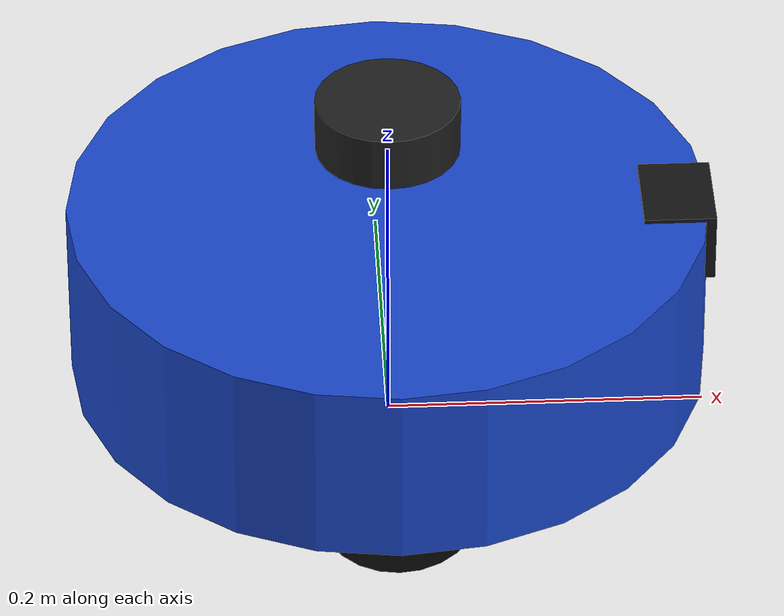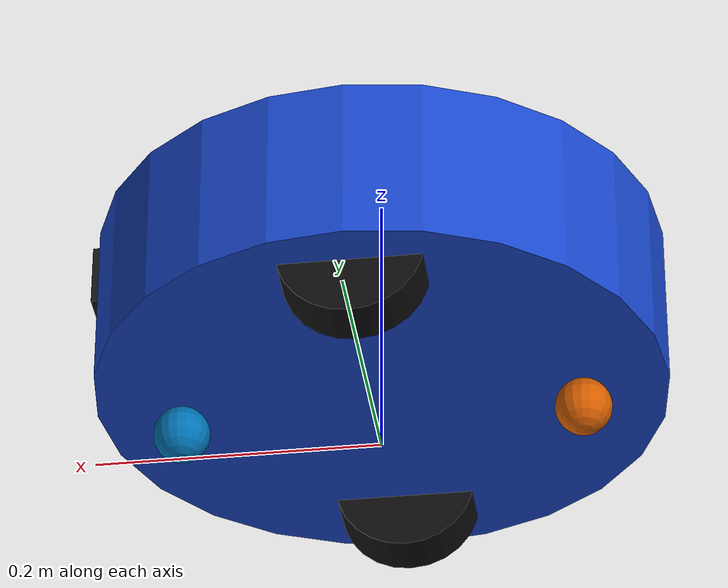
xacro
<?xml version="1.0"?>
<robot xmlns:xacro="http://www.ros.org/wiki/xacro" name="arbotrix_bot">

  <link name="base_footprint"/>

  <link name="base_link">
    <visual>
      <geometry><cylinder radius="0.20" length="0.12"/></geometry>
      <material name="body_blue"><color rgba="0.10 0.28 0.80 1.0"/></material>
    </visual>
    <collision>
      <geometry><cylinder radius="0.20" length="0.12"/></geometry>
    </collision>
    <inertial>
      <mass value="8.0"/>
      <origin xyz="0 0 0" rpy="0 0 0"/>
      <inertia ixx="0.082" ixy="0" ixz="0" iyy="0.082" iyz="0" izz="0.160"/>
    </inertial>
  </link>

  <joint name="base_footprint_joint" type="fixed">
    <parent link="base_footprint"/>
    <child link="base_link"/>
    <origin xyz="0 0 0.10" rpy="0 0 0"/>
  </joint>

  <!-- =========================
       DRIVE WHEELS
       wheel separation = 0.30 m
       wheel radius     = 0.05 m
       ========================= -->
  <link name="left_wheel_link">
    <visual>
      <origin rpy="1.57079632679 0 0"/>
      <geometry><cylinder radius="0.05" length="0.035"/></geometry>
      <material name="wheel_black"><color rgba="0.05 0.05 0.05 1.0"/></material>
    </visual>
    <collision>
      <origin rpy="1.57079632679 0 0"/>
      <geometry><cylinder radius="0.05" length="0.035"/></geometry>
    </collision>
    <inertial>
      <mass value="0.35"/>
      <inertia ixx="0.00024" ixy="0" ixz="0" iyy="0.00044" iyz="0" izz="0.00024"/>
    </inertial>
  </link>

  <joint name="left_wheel_joint" type="continuous">
    <parent link="base_link"/>
    <child link="left_wheel_link"/>
    <origin xyz="0 0.15 -0.05" rpy="0 0 0"/>
    <axis xyz="0 1 0"/>
  </joint>

  <link name="right_wheel_link">
    <visual>
      <origin rpy="1.57079632679 0 0"/>
      <geometry><cylinder radius="0.05" length="0.035"/></geometry>
      <material name="wheel_black"/>
    </visual>
    <collision>
      <origin rpy="1.57079632679 0 0"/>
      <geometry><cylinder radius="0.05" length="0.035"/></geometry>
    </collision>
    <inertial>
      <mass value="0.35"/>
      <inertia ixx="0.00024" ixy="0" ixz="0" iyy="0.00044" iyz="0" izz="0.00024"/>
    </inertial>
  </link>

  <joint name="right_wheel_joint" type="continuous">
    <parent link="base_link"/>
    <child link="right_wheel_link"/>
    <origin xyz="0 -0.15 -0.05" rpy="0 0 0"/>
    <axis xyz="0 1 0"/>
  </joint>

  <!-- Passive contact points keep the round body stable in Gazebo. -->
  <link name="front_caster_link">
    <collision><geometry><sphere radius="0.02"/></geometry></collision>
    <visual><geometry><sphere radius="0.02"/></geometry></visual>
    <inertial><mass value="0.05"/><inertia ixx="0.00001" ixy="0" ixz="0" iyy="0.00001" iyz="0" izz="0.00001"/></inertial>
  </link>
  <joint name="front_caster_joint" type="fixed">
    <parent link="base_link"/><child link="front_caster_link"/>
    <origin xyz="0.14 0 -0.08"/>
  </joint>

  <link name="rear_caster_link">
    <collision><geometry><sphere radius="0.02"/></geometry></collision>
    <visual><geometry><sphere radius="0.02"/></geometry></visual>
    <inertial><mass value="0.05"/><inertia ixx="0.00001" ixy="0" ixz="0" iyy="0.00001" iyz="0" izz="0.00001"/></inertial>
  </link>
  <joint name="rear_caster_joint" type="fixed">
    <parent link="base_link"/><child link="rear_caster_link"/>
    <origin xyz="-0.14 0 -0.08"/>
  </joint>

  <!-- =========================
       360-degree LiDAR
       ========================= -->
  <link name="lidar_link">
    <visual>
      <geometry><cylinder radius="0.045" length="0.035"/></geometry>
      <material name="lidar_dark"><color rgba="0.12 0.12 0.12 1"/></material>
    </visual>
  </link>
  <joint name="lidar_joint" type="fixed">
    <parent link="base_link"/><child link="lidar_link"/>
    <origin xyz="0 0 0.12" rpy="0 0 0"/>
  </joint>

  <!-- =========================
       RGB camera
       ========================= -->
  <link name="camera_link">
    <visual>
      <geometry><box size="0.045 0.06 0.045"/></geometry>
      <material name="camera_dark"><color rgba="0.08 0.08 0.08 1"/></material>
    </visual>
  </link>
  <joint name="camera_joint" type="fixed">
    <parent link="base_link"/><child link="camera_link"/>
    <origin xyz="0.18 0 0.04" rpy="0 0 0"/>
  </joint>

  <!-- =========================
       GAZEBO CONTACT/FUNCTIONAL SETTINGS
       ========================= -->
  <gazebo reference="left_wheel_link">
    <mu1>1.0</mu1><mu2>1.0</mu2><kp>1000000.0</kp><kd>10.0</kd>
  </gazebo>
  <gazebo reference="right_wheel_link">
    <mu1>1.0</mu1><mu2>1.0</mu2><kp>1000000.0</kp><kd>10.0</kd>
  </gazebo>
  <gazebo reference="front_caster_link"><mu1>0.02</mu1><mu2>0.02</mu2></gazebo>
  <gazebo reference="rear_caster_link"><mu1>0.02</mu1><mu2>0.02</mu2></gazebo>

  <gazebo reference="lidar_link">
    <sensor name="lidar" type="ray">
      <always_on>true</always_on>
      <visualize>false</visualize>
      <update_rate>8.0</update_rate>
      <ray>
        <scan>
          <horizontal>
            <samples>180</samples>
            <resolution>1</resolution>
            <min_angle>-3.14159265359</min_angle>
            <max_angle>3.14159265359</max_angle>
          </horizontal>
        </scan>
        <range><min>0.08</min><max>8.0</max><resolution>0.02</resolution></range>
        <noise><type>gaussian</type><mean>0.0</mean><stddev>0.005</stddev></noise>
      </ray>
      <plugin name="gazebo_ros_laser" filename="libgazebo_ros_ray_sensor.so">
        <ros>
          <remapping>~/out:=scan</remapping>
        </ros>
        <output_type>sensor_msgs/LaserScan</output_type>
        <frame_name>lidar_link</frame_name>
      </plugin>
    </sensor>
  </gazebo>

  <gazebo reference="camera_link">
    <sensor name="front_camera" type="camera">
      <always_on>true</always_on>
      <visualize>false</visualize>
      <update_rate>8.0</update_rate>
      <camera name="front_camera">
        <horizontal_fov>1.047</horizontal_fov>
        <image><width>320</width><height>240</height><format>R8G8B8</format></image>
        <clip><near>0.05</near><far>20.0</far></clip>
      </camera>
      <plugin name="gazebo_ros_camera" filename="libgazebo_ros_camera.so">
        <ros>
          <remapping>image_raw:=camera/image_raw</remapping>
          <remapping>camera_info:=camera/camera_info</remapping>
        </ros>
        <camera_name>camera</camera_name>
        <frame_name>camera_link</frame_name>
      </plugin>
    </sensor>
  </gazebo>

  <!-- Critical: this plugin owns odom -> base_footprint. Do not add another broadcaster for it. -->
  <gazebo>
    <plugin name="diff_drive" filename="libgazebo_ros_diff_drive.so">
      <ros>
        <remapping>cmd_vel:=cmd_vel</remapping>
        <remapping>odom:=odom</remapping>
      </ros>
      <update_rate>20</update_rate>
      <left_joint>left_wheel_joint</left_joint>
      <right_joint>right_wheel_joint</right_joint>
      <wheel_separation>0.30</wheel_separation>
      <wheel_diameter>0.10</wheel_diameter>
      <max_wheel_torque>8.0</max_wheel_torque>
      <max_wheel_acceleration>2.0</max_wheel_acceleration>
      <odometry_frame>odom</odometry_frame>
      <robot_base_frame>base_footprint</robot_base_frame>
      <publish_odom>true</publish_odom>
      <publish_odom_tf>true</publish_odom_tf>
      <publish_wheel_tf>false</publish_wheel_tf>
      <odometry_source>1</odometry_source>
    </plugin>

    <!-- ROS 2 Gazebo diff-drive does not publish JointState itself.
         This lightweight plugin supplies wheel joint positions to robot_state_publisher. -->
    <plugin name="joint_state_publisher" filename="libgazebo_ros_joint_state_publisher.so">
      <update_rate>20</update_rate>
      <joint_name>left_wheel_joint</joint_name>
      <joint_name>right_wheel_joint</joint_name>
    </plugin>
  </gazebo>

</robot>
